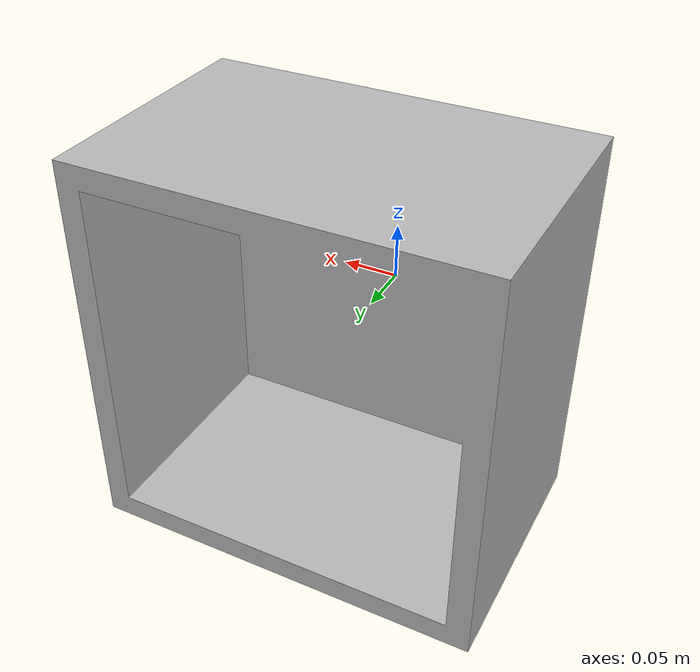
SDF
<?xml version="1.0" ?>
<sdf version="1.5">
  <model name="FR_box">
    <link name="link">
      <inertial>
        <mass>5.0</mass>
        <inertia>
          <ixx>0.0058</ixx>
          <ixy>0</ixy>
          <ixz>0</ixz>
          <iyy>0.0058</iyy>
          <iyz>0</iyz>
          <izz>0.00019</izz>
        </inertia>
      </inertial>

      <collision name="collision">
        <pose>0 0 0 0 0 0</pose>
        <geometry>
          <mesh>
            <uri>model://FR_box/meshes/FR_box.stl</uri>
            <scale>0.01 0.01 0.01</scale>
          </mesh>
        </geometry>
        <surface>
          <friction>
            <ode>
              <mu>0.01</mu>
              <mu2>0.01</mu2>
            </ode>
          </friction>
        </surface>
      </collision>

      <visual name="visual">
        <geometry>
          <mesh>
            <uri>model://FR_box/meshes/FR_box.stl</uri>
            <scale>0.01 0.01 0.01</scale>
          </mesh>
        </geometry>
      </visual>
    </link>
  </model>
</sdf>
